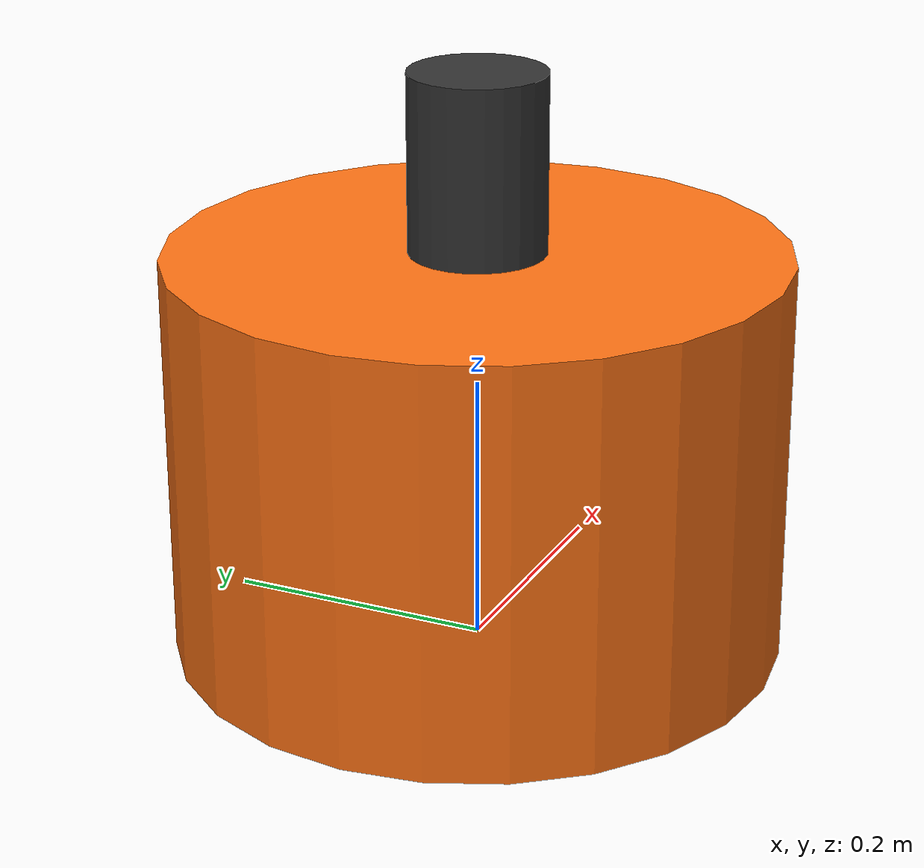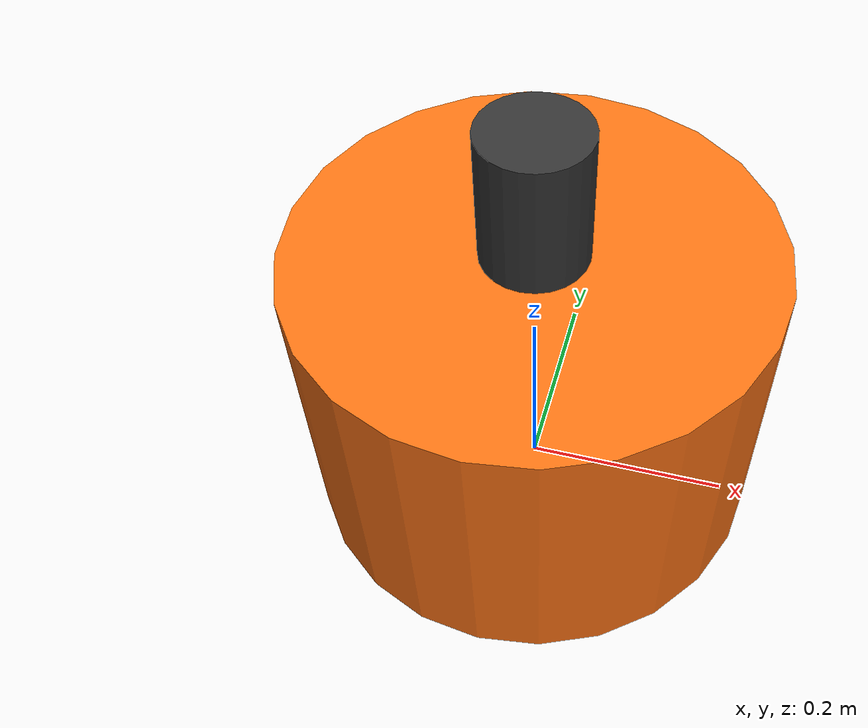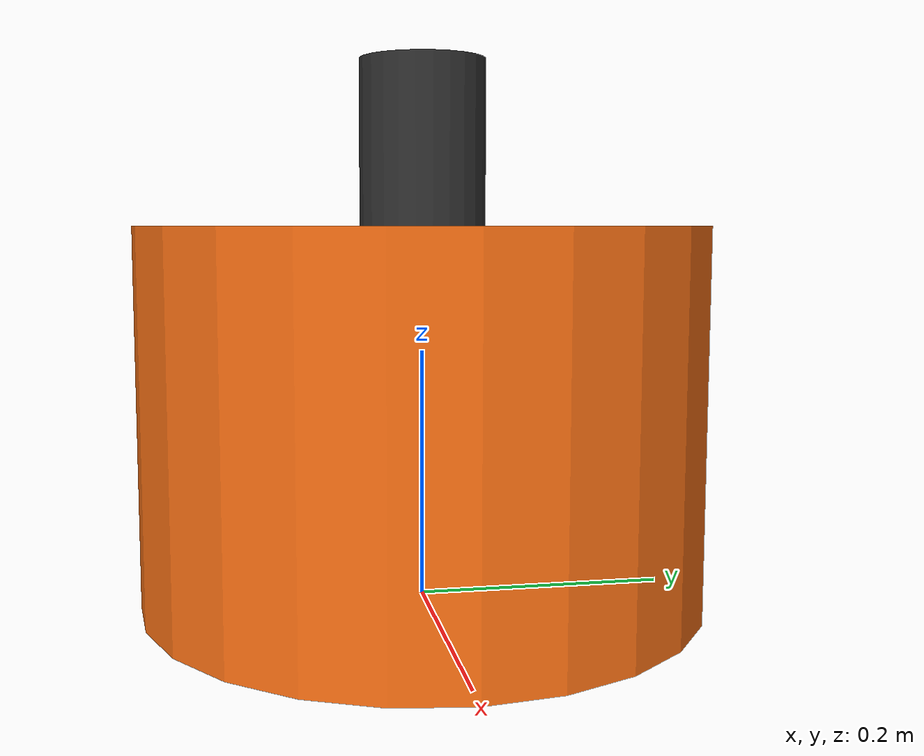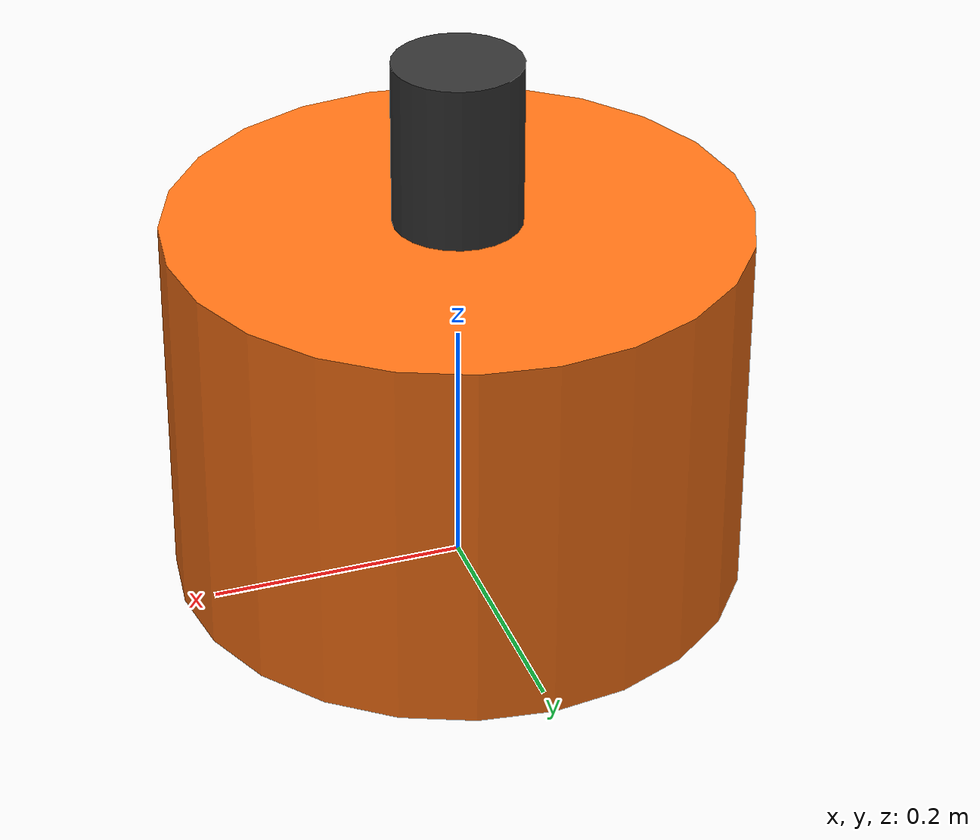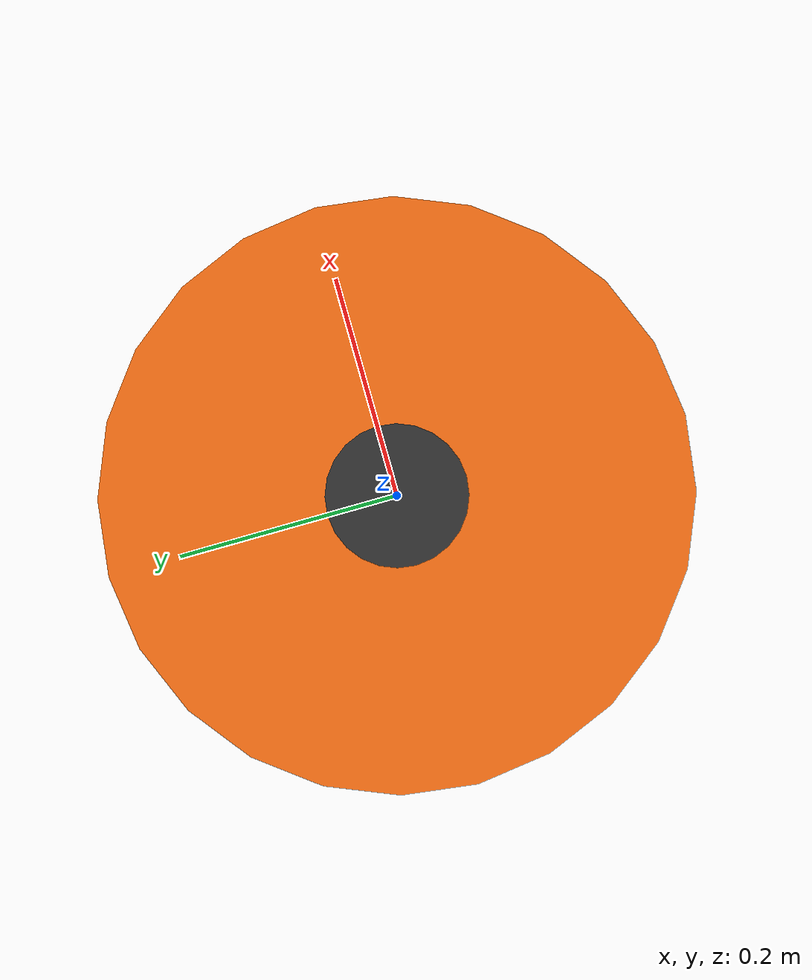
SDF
<?xml version="1.0" encoding="UTF-8"?>
<sdf version='1.9'>
  <model name='led_beacon'>
    <!-- Static but with collision geometry — vehicles collide with it, the
         buoy itself doesn't bob. -->
    <static>true</static>

    <link name='buoy_base'>
      <pose>0 0 0.15 0 0 0</pose>
      <collision name='buoy_collision'>
        <geometry>
          <cylinder><radius>0.225</radius><length>0.30</length></cylinder>
        </geometry>
      </collision>
      <visual name='buoy_visual'>
        <geometry>
          <cylinder><radius>0.225</radius><length>0.30</length></cylinder>
        </geometry>
        <material>
          <ambient>0.8 0.35 0.05 1</ambient>
          <diffuse>1.0 0.45 0.08 1</diffuse>
          <specular>0.1 0.1 0.1 1</specular>
        </material>
      </visual>
    </link>

    <link name='led_off'>
      <pose>0 0 0.365 0 0 0</pose>
      <visual name='led_off_visual'>
        <geometry>
          <cylinder><radius>0.05</radius><length>0.13</length></cylinder>
        </geometry>
        <material>
          <ambient>0.1 0.1 0.1 1</ambient>
          <diffuse>0.2 0.2 0.2 1</diffuse>
          <specular>0.05 0.05 0.05 1</specular>
        </material>
      </visual>
    </link>

    <joint name='led_off_fixed' type='fixed'>
      <parent>buoy_base</parent>
      <child>led_off</child>
    </joint>
  </model>
</sdf>
